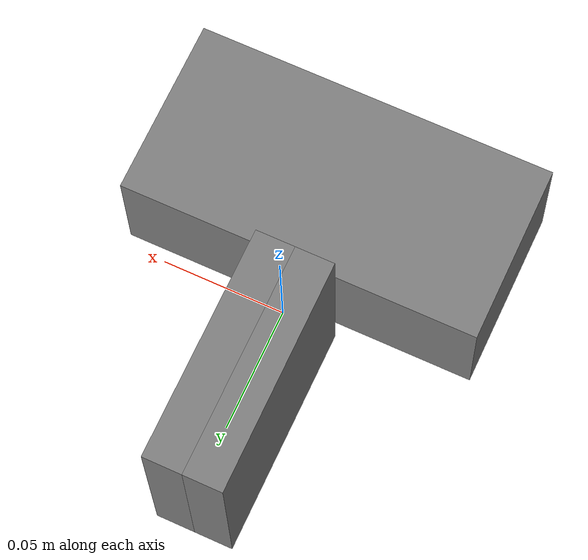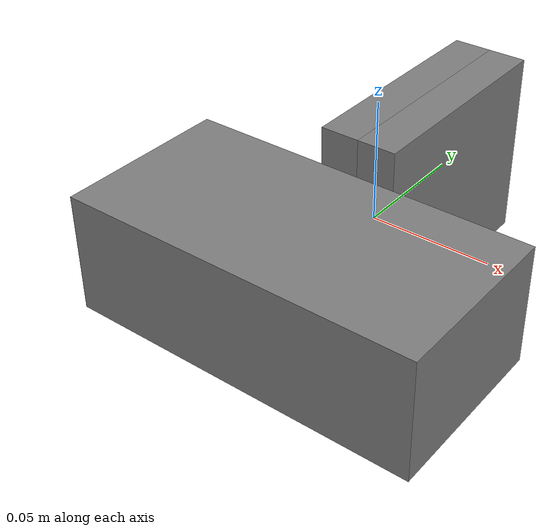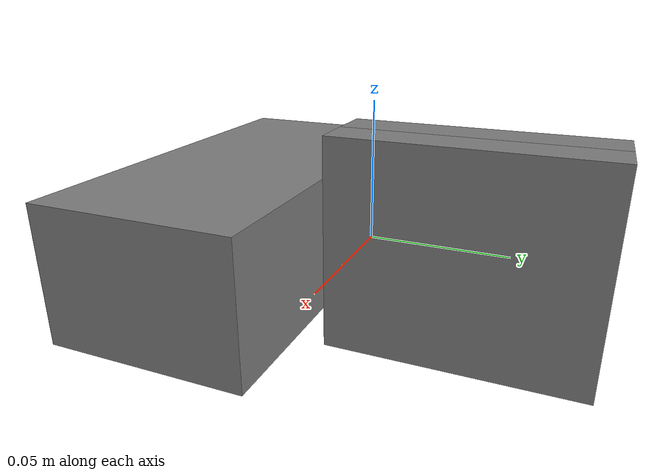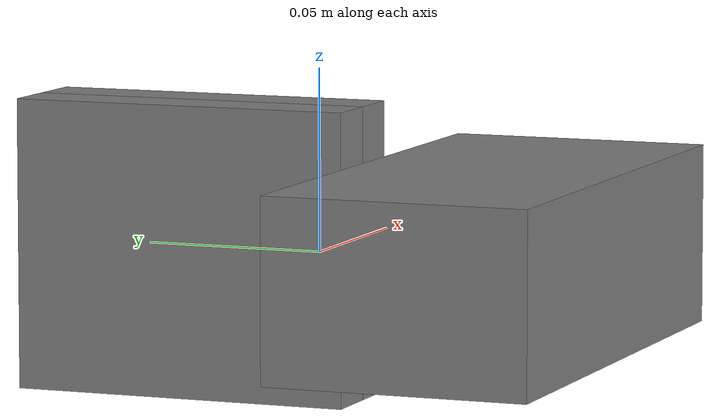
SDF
<?xml version="1.0"?>
<sdf version="1.7">
  <model name="Schunk_Gripper">
    <link name="body">
      <pose>0 -0.049133 0 0 0 0</pose>
      <inertial>
        <mass>0.988882</mass>
        <inertia>
          <ixx>0.162992</ixx>
          <ixy>0</ixy>
          <ixz>0</ixz>
          <iyy>0.162992</iyy>
          <iyz>0</iyz>
          <izz>0.164814</izz>
        </inertia>
      </inertial>
      <visual name="visual">
        <geometry>
          <box>
            <size>0.146 0.0725 0.049521</size>
          </box>
        </geometry>
        <material>
          <ambient>0.3 0.3 0.3 1</ambient>
          <diffuse>0.5 0.5 0.5 1</diffuse>
          <specular>0.01 0.01 0.01 1</specular>
          <emissive>0 0 0 1</emissive>
        </material>
      </visual>
      <collision name="collision">
        <geometry>
          <box>
            <size>0.146 0.0725 0.049521</size>
          </box>
        </geometry>
        <surface>
          <friction>
            <ode>
              <mu>1</mu>
              <mu2>1</mu2>
              <fdir1>0 0 0</fdir1>
              <slip1>0</slip1>
              <slip2>0</slip2>
            </ode>
            <torsional>
              <coefficient>1</coefficient>
              <patch_radius>0</patch_radius>
              <surface_radius>0</surface_radius>
              <use_patch_radius>1</use_patch_radius>
              <ode>
                <slip>0</slip>
              </ode>
            </torsional>
          </friction>
          <bounce>
            <restitution_coefficient>0</restitution_coefficient>
            <threshold>1e+06</threshold>
          </bounce>
          <contact>
            <collide_without_contact>0</collide_without_contact>
            <collide_without_contact_bitmask>1</collide_without_contact_bitmask>
            <collide_bitmask>1</collide_bitmask>
            <ode>
              <soft_cfm>0</soft_cfm>
              <soft_erp>0.2</soft_erp>
              <kp>1e+13</kp>
              <kd>1</kd>
              <max_vel>0.01</max_vel>
              <min_depth>0</min_depth>
            </ode>
            <bullet>
              <split_impulse>1</split_impulse>
              <split_impulse_penetration_threshold>-0.01</split_impulse_penetration_threshold>
              <soft_cfm>0</soft_cfm>
              <soft_erp>0.2</soft_erp>
              <kp>1e+13</kp>
              <kd>1</kd>
            </bullet>
          </contact>
        </surface>
      </collision>
    </link>
    <frame name="body_frame">
      <pose relative_to="body"/>
    </frame>
    <link name="left_finger">
      <pose>-0.008 0.035 0 0 0 0</pose>
      <inertial>
        <mass>0.05</mass>
        <inertia>
          <ixx>0.16</ixx>
          <ixy>0</ixy>
          <ixz>0</ixz>
          <iyy>0.16</iyy>
          <iyz>0</iyz>
          <izz>0.16</izz>
        </inertia>
      </inertial>
      <visual name="visual">
        <geometry>
          <box>
            <size>0.016 0.095 0.08</size>
          </box>
        </geometry>
        <material>
          <ambient>0.3 0.3 0.3 1</ambient>
          <diffuse>0.5 0.5 0.5 1</diffuse>
          <specular>0.01 0.01 0.01 1</specular>
          <emissive>0 0 0 1</emissive>
        </material>
      </visual>
      <collision name="collision">
        <geometry>
          <box>
            <size>0.016 0.095 0.08</size>
          </box>
        </geometry>
        <surface>
          <friction>
            <ode>
              <mu>1</mu>
              <mu2>1</mu2>
              <fdir1>0 0 0</fdir1>
              <slip1>0</slip1>
              <slip2>0</slip2>
            </ode>
            <torsional>
              <coefficient>1</coefficient>
              <patch_radius>0</patch_radius>
              <surface_radius>0</surface_radius>
              <use_patch_radius>1</use_patch_radius>
              <ode>
                <slip>0</slip>
              </ode>
            </torsional>
          </friction>
          <bounce>
            <restitution_coefficient>0</restitution_coefficient>
            <threshold>1e+06</threshold>
          </bounce>
          <contact>
            <collide_without_contact>0</collide_without_contact>
            <collide_without_contact_bitmask>1</collide_without_contact_bitmask>
            <collide_bitmask>1</collide_bitmask>
            <ode>
              <soft_cfm>0</soft_cfm>
              <soft_erp>0.2</soft_erp>
              <kp>1e+13</kp>
              <kd>1</kd>
              <max_vel>0.01</max_vel>
              <min_depth>0</min_depth>
            </ode>
            <bullet>
              <split_impulse>1</split_impulse>
              <split_impulse_penetration_threshold>-0.01</split_impulse_penetration_threshold>
              <soft_cfm>0</soft_cfm>
              <soft_erp>0.2</soft_erp>
              <kp>1e+13</kp>
              <kd>1</kd>
            </bullet>
          </contact>
        </surface>
      </collision>
    </link>
    <link name="right_finger">
      <pose>0.008 0.035 0 0 0 0</pose>
      <inertial>
        <mass>0.05</mass>
        <inertia>
          <ixx>0.16</ixx>
          <ixy>0</ixy>
          <ixz>0</ixz>
          <iyy>0.16</iyy>
          <iyz>0</iyz>
          <izz>0.16</izz>
        </inertia>
      </inertial>
      <visual name="visual">
        <geometry>
          <box>
            <size>0.016 0.095 0.08</size>
          </box>
        </geometry>
        <material>
          <ambient>0.3 0.3 0.3 1</ambient>
          <diffuse>0.5 0.5 0.5 1</diffuse>
          <specular>0.01 0.01 0.01 1</specular>
          <emissive>0 0 0 1</emissive>
        </material>
      </visual>
      <collision name="collision">
        <geometry>
          <box>
            <size>0.016 0.095 0.08</size>
          </box>
        </geometry>
        <surface>
          <friction>
            <ode>
              <mu>1</mu>
              <mu2>1</mu2>
              <fdir1>0 0 0</fdir1>
              <slip1>0</slip1>
              <slip2>0</slip2>
            </ode>
            <torsional>
              <coefficient>1</coefficient>
              <patch_radius>0</patch_radius>
              <surface_radius>0</surface_radius>
              <use_patch_radius>1</use_patch_radius>
              <ode>
                <slip>0</slip>
              </ode>
            </torsional>
          </friction>
          <bounce>
            <restitution_coefficient>0</restitution_coefficient>
            <threshold>1e+06</threshold>
          </bounce>
          <contact>
            <collide_without_contact>0</collide_without_contact>
            <collide_without_contact_bitmask>1</collide_without_contact_bitmask>
            <collide_bitmask>1</collide_bitmask>
            <ode>
              <soft_cfm>0</soft_cfm>
              <soft_erp>0.2</soft_erp>
              <kp>1e+13</kp>
              <kd>1</kd>
              <max_vel>0.01</max_vel>
              <min_depth>0</min_depth>
            </ode>
            <bullet>
              <split_impulse>1</split_impulse>
              <split_impulse_penetration_threshold>-0.01</split_impulse_penetration_threshold>
              <soft_cfm>0</soft_cfm>
              <soft_erp>0.2</soft_erp>
              <kp>1e+13</kp>
              <kd>1</kd>
            </bullet>
          </contact>
        </surface>
      </collision>
    </link>
    <joint name="left_finger_sliding_joint" type="prismatic">
      <parent>body</parent>
      <child>left_finger</child>
      <axis>
        <xyz>1 0 0</xyz>
        <!-- Drake attaches an actuator to all and only joints with a nonzero
             effort limit. -->
        <limit>
          <lower>-0.055</lower>
          <upper>0</upper>
          <effort>80</effort>
          <stiffness>15000</stiffness>
        </limit>
        <dynamics>
          <spring_reference>0</spring_reference>
          <spring_stiffness>0</spring_stiffness>
          <damping>0</damping>
          <friction>0</friction>
        </dynamics>
      </axis>
    </joint>
    <joint name="right_finger_sliding_joint" type="prismatic">
      <parent>body</parent>
      <child>right_finger</child>
      <axis>
        <xyz>1 0 0</xyz>
        <!-- Drake attaches an actuator to all and only joints with a nonzero
             effort limit. -->
        <limit>
          <lower>0</lower>
          <upper>0.055</upper>
          <effort>80</effort>
          <stiffness>15000</stiffness>
        </limit>
        <dynamics>
          <spring_reference>0</spring_reference>
          <spring_stiffness>0</spring_stiffness>
          <damping>0</damping>
          <friction>0</friction>
        </dynamics>
      </axis>
    </joint>
    <static>0</static>
  </model>
</sdf>
